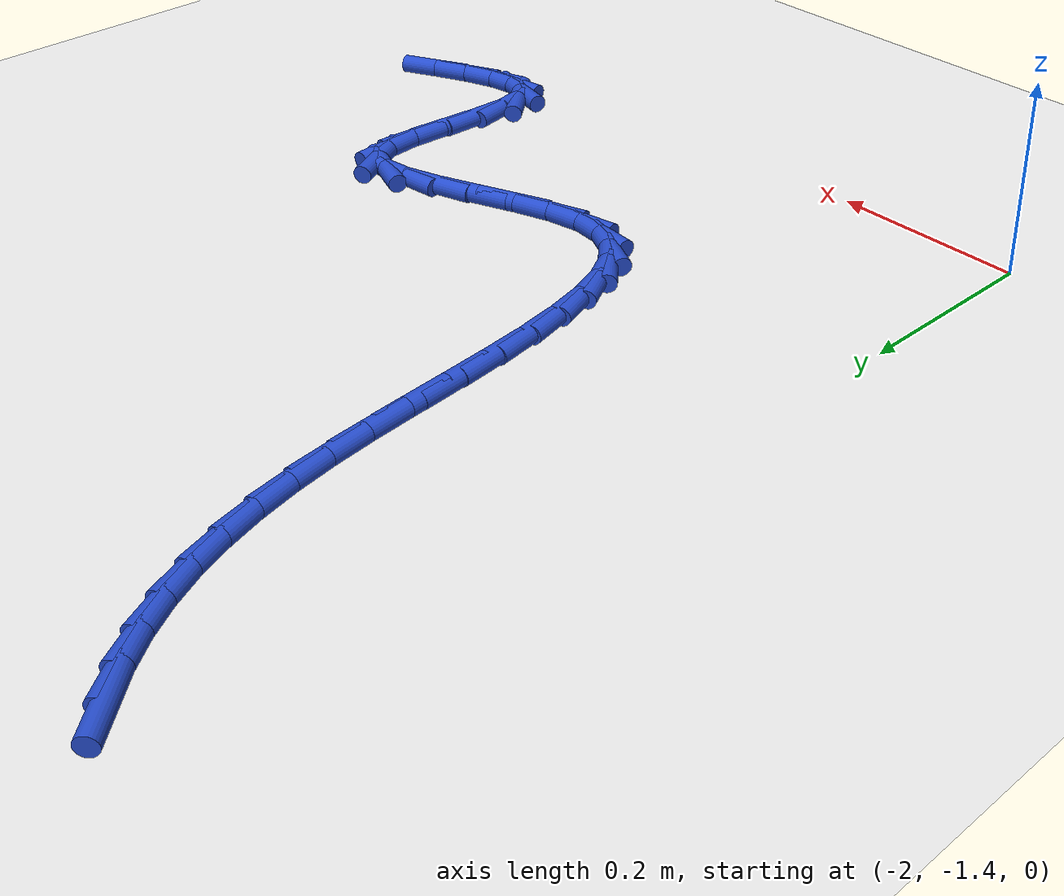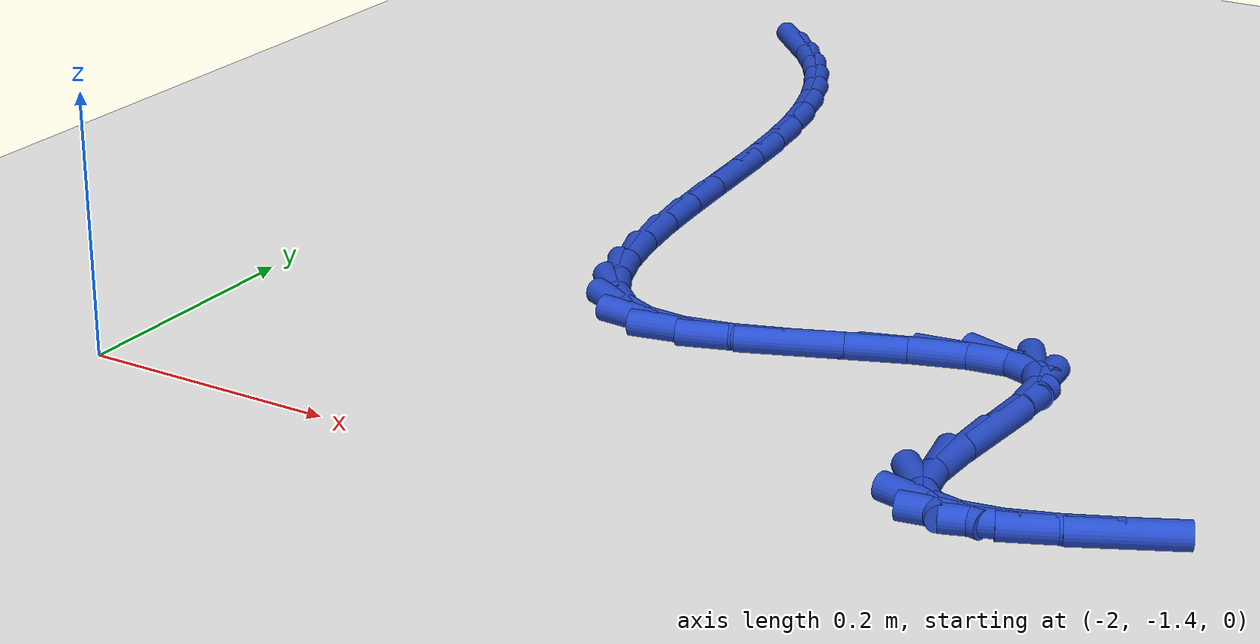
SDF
<sdf version="1.6">
 <world name="default">
  <model name="ground_plane">
   <static>1</static>
   <link name="link">
    <collision name="collision">
     <geometry><plane><normal>0 0 1</normal><size>100 100</size></plane></geometry>
     <surface><friction><ode><mu>100</mu><mu2>50</mu2></ode></friction></surface>
    </collision>
    <visual name="visual">
     <cast_shadows>0</cast_shadows>
     <geometry><plane><normal>0 0 1</normal><size>100 100</size></plane></geometry>
     <material>
      <script><uri>file://media/materials/scripts/gazebo.material</uri><name>Gazebo/WhiteGlow</name></script>
     </material>
    </visual>
   </link>
  </model>
  <model name="line">
   <link name="link_139">
    <pose>-1.9112197061378138 -0.48710332789352906 0.01 0 1.57 -0.8206935505672408</pose>
    <collision name="collision">
     <geometry><cylinder><radius>0.01</radius><length>0.08</length></cylinder></geometry>
    </collision>
    <visual name="visual">
     <material>
      <script><name>Gazebo/Blue</name><uri>file://media/materials/scripts/gazebo.material</uri></script>
     </material>
     <geometry><cylinder><radius>0.01</radius><length>0.08</length></cylinder></geometry>
    </visual>
   </link>
   <link name="link_140">
    <pose>-1.8882291716728896 -0.5117768838238149 0.01 0 1.57 -0.9207441492463986</pose>
    <collision name="collision">
     <geometry><cylinder><radius>0.01</radius><length>0.08</length></cylinder></geometry>
    </collision>
    <visual name="visual">
     <material>
      <script><name>Gazebo/Blue</name><uri>file://media/materials/scripts/gazebo.material</uri></script>
     </material>
     <geometry><cylinder><radius>0.01</radius><length>0.08</length></cylinder></geometry>
    </visual>
   </link>
   <link name="link_141">
    <pose>-1.8677409371517546 -0.5387249201464833 0.01 0 1.57 -1.018535880360209</pose>
    <collision name="collision">
     <geometry><cylinder><radius>0.01</radius><length>0.08</length></cylinder></geometry>
    </collision>
    <visual name="visual">
     <material>
      <script><name>Gazebo/Blue</name><uri>file://media/materials/scripts/gazebo.material</uri></script>
     </material>
     <geometry><cylinder><radius>0.01</radius><length>0.08</length></cylinder></geometry>
    </visual>
   </link>
   <link name="link_142">
    <pose>-1.8496781105260163 -0.568037237250114 0.01 0 1.57 -1.1114110143197498</pose>
    <collision name="collision">
     <geometry><cylinder><radius>0.01</radius><length>0.08</length></cylinder></geometry>
    </collision>
    <visual name="visual">
     <material>
      <script><name>Gazebo/Blue</name><uri>file://media/materials/scripts/gazebo.material</uri></script>
     </material>
     <geometry><cylinder><radius>0.01</radius><length>0.08</length></cylinder></geometry>
    </visual>
   </link>
   <link name="link_143">
    <pose>-1.8339637997472826 -0.5998036355232865 0.01 0 1.57 -1.1973808792304503</pose>
    <collision name="collision">
     <geometry><cylinder><radius>0.01</radius><length>0.08</length></cylinder></geometry>
    </collision>
    <visual name="visual">
     <material>
      <script><name>Gazebo/Blue</name><uri>file://media/materials/scripts/gazebo.material</uri></script>
     </material>
     <geometry><cylinder><radius>0.01</radius><length>0.08</length></cylinder></geometry>
    </visual>
   </link>
   <link name="link_144">
    <pose>-1.8205211127671606 -0.6341139153545808 0.01 0 1.57 -1.2752529120552323</pose>
    <collision name="collision">
     <geometry><cylinder><radius>0.01</radius><length>0.08</length></cylinder></geometry>
    </collision>
    <visual name="visual">
     <material>
      <script><name>Gazebo/Blue</name><uri>file://media/materials/scripts/gazebo.material</uri></script>
     </material>
     <geometry><cylinder><radius>0.01</radius><length>0.08</length></cylinder></geometry>
    </visual>
   </link>
   <link name="link_145">
    <pose>-1.8092731575372578 -0.6710578771325741 0.01 0 1.57 -1.3445698397428605</pose>
    <collision name="collision">
     <geometry><cylinder><radius>0.01</radius><length>0.08</length></cylinder></geometry>
    </collision>
    <visual name="visual">
     <material>
      <script><name>Gazebo/Blue</name><uri>file://media/materials/scripts/gazebo.material</uri></script>
     </material>
     <geometry><cylinder><radius>0.01</radius><length>0.08</length></cylinder></geometry>
    </visual>
   </link>
   <link name="link_146">
    <pose>-1.8001430420091833 -0.710725321245847 0.01 0 1.57 -1.4054278750102835</pose>
    <collision name="collision">
     <geometry><cylinder><radius>0.01</radius><length>0.08</length></cylinder></geometry>
    </collision>
    <visual name="visual">
     <material>
      <script><name>Gazebo/Blue</name><uri>file://media/materials/scripts/gazebo.material</uri></script>
     </material>
     <geometry><cylinder><radius>0.01</radius><length>0.08</length></cylinder></geometry>
    </visual>
   </link>
   <link name="link_147">
    <pose>-1.79305345765406 -0.7532052532649454 0.01 0 1.57 -1.4540579397798228</pose>
    <collision name="collision">
     <geometry><cylinder><radius>0.01</radius><length>0.08</length></cylinder></geometry>
    </collision>
    <visual name="visual">
     <material>
      <script><name>Gazebo/Blue</name><uri>file://media/materials/scripts/gazebo.material</uri></script>
     </material>
     <geometry><cylinder><radius>0.01</radius><length>0.08</length></cylinder></geometry>
    </visual>
   </link>
   <link name="link_148">
    <pose>-1.7877672742345798 -0.7982816724492007 0.01 0 1.57 -1.4827786442672295</pose>
    <collision name="collision">
     <geometry><cylinder><radius>0.01</radius><length>0.08</length></cylinder></geometry>
    </collision>
    <visual name="visual">
     <material>
      <script><name>Gazebo/Blue</name><uri>file://media/materials/scripts/gazebo.material</uri></script>
     </material>
     <geometry><cylinder><radius>0.01</radius><length>0.08</length></cylinder></geometry>
    </visual>
   </link>
   <link name="link_149">
    <pose>-1.7836468560786016 -0.8449742470637492 0.01 0 1.57 -1.4935521685091329</pose>
    <collision name="collision">
     <geometry><cylinder><radius>0.01</radius><length>0.08</length></cylinder></geometry>
    </collision>
    <visual name="visual">
     <material>
      <script><name>Gazebo/Blue</name><uri>file://media/materials/scripts/gazebo.material</uri></script>
     </material>
     <geometry><cylinder><radius>0.01</radius><length>0.08</length></cylinder></geometry>
    </visual>
   </link>
   <link name="link_150">
    <pose>-1.7799928425937792 -0.8921848485462135 0.01 0 1.57 -1.4876317866892743</pose>
    <collision name="collision">
     <geometry><cylinder><radius>0.01</radius><length>0.08</length></cylinder></geometry>
    </collision>
    <visual name="visual">
     <material>
      <script><name>Gazebo/Blue</name><uri>file://media/materials/scripts/gazebo.material</uri></script>
     </material>
     <geometry><cylinder><radius>0.01</radius><length>0.08</length></cylinder></geometry>
    </visual>
   </link>
   <link name="link_151">
    <pose>-1.7761058731877686 -0.9388153483342158 0.01 0 1.57 -1.4639953051905088</pose>
    <collision name="collision">
     <geometry><cylinder><radius>0.01</radius><length>0.08</length></cylinder></geometry>
    </collision>
    <visual name="visual">
     <material>
      <script><name>Gazebo/Blue</name><uri>file://media/materials/scripts/gazebo.material</uri></script>
     </material>
     <geometry><cylinder><radius>0.01</radius><length>0.08</length></cylinder></geometry>
    </visual>
   </link>
   <link name="link_152">
    <pose>-1.771286587268222 -0.9837676178653774 0.01 0 1.57 -1.4190189010455867</pose>
    <collision name="collision">
     <geometry><cylinder><radius>0.01</radius><length>0.08</length></cylinder></geometry>
    </collision>
    <visual name="visual">
     <material>
      <script><name>Gazebo/Blue</name><uri>file://media/materials/scripts/gazebo.material</uri></script>
     </material>
     <geometry><cylinder><radius>0.01</radius><length>0.08</length></cylinder></geometry>
    </visual>
   </link>
   <link name="link_153">
    <pose>-1.7648356242427954 -1.0259435285773213 0.01 0 1.57 -1.3454056612288068</pose>
    <collision name="collision">
     <geometry><cylinder><radius>0.01</radius><length>0.08</length></cylinder></geometry>
    </collision>
    <visual name="visual">
     <material>
      <script><name>Gazebo/Blue</name><uri>file://media/materials/scripts/gazebo.material</uri></script>
     </material>
     <geometry><cylinder><radius>0.01</radius><length>0.08</length></cylinder></geometry>
    </visual>
   </link>
   <link name="link_154">
    <pose>-1.7560536235191428 -1.064244951907667 0.01 0 1.57 -1.2301892251169746</pose>
    <collision name="collision">
     <geometry><cylinder><radius>0.01</radius><length>0.08</length></cylinder></geometry>
    </collision>
    <visual name="visual">
     <material>
      <script><name>Gazebo/Blue</name><uri>file://media/materials/scripts/gazebo.material</uri></script>
     </material>
     <geometry><cylinder><radius>0.01</radius><length>0.08</length></cylinder></geometry>
    </visual>
   </link>
   <link name="link_155">
    <pose>-1.7442412245049188 -1.097573759294038 0.01 0 1.57 -1.0525876415565742</pose>
    <collision name="collision">
     <geometry><cylinder><radius>0.01</radius><length>0.08</length></cylinder></geometry>
    </collision>
    <visual name="visual">
     <material>
      <script><name>Gazebo/Blue</name><uri>file://media/materials/scripts/gazebo.material</uri></script>
     </material>
     <geometry><cylinder><radius>0.01</radius><length>0.08</length></cylinder></geometry>
    </visual>
   </link>
   <link name="link_156">
    <pose>-1.728699066607777 -1.1248318221740548 0.01 0 1.57 -0.7883415164500933</pose>
    <collision name="collision">
     <geometry><cylinder><radius>0.01</radius><length>0.08</length></cylinder></geometry>
    </collision>
    <visual name="visual">
     <material>
      <script><name>Gazebo/Blue</name><uri>file://media/materials/scripts/gazebo.material</uri></script>
     </material>
     <geometry><cylinder><radius>0.01</radius><length>0.08</length></cylinder></geometry>
    </visual>
   </link>
   <link name="link_157">
    <pose>-1.708727789235372 -1.1449210119853401 0.01 0 1.57 -0.44018624037053355</pose>
    <collision name="collision">
     <geometry><cylinder><radius>0.01</radius><length>0.08</length></cylinder></geometry>
    </collision>
    <visual name="visual">
     <material>
      <script><name>Gazebo/Blue</name><uri>file://media/materials/scripts/gazebo.material</uri></script>
     </material>
     <geometry><cylinder><radius>0.01</radius><length>0.08</length></cylinder></geometry>
    </visual>
   </link>
   <link name="link_158">
    <pose>-1.6836280317953587 -1.156743200165515 0.01 0 1.57 -0.0792802185154144</pose>
    <collision name="collision">
     <geometry><cylinder><radius>0.01</radius><length>0.08</length></cylinder></geometry>
    </collision>
    <visual name="visual">
     <material>
      <script><name>Gazebo/Blue</name><uri>file://media/materials/scripts/gazebo.material</uri></script>
     </material>
     <geometry><cylinder><radius>0.01</radius><length>0.08</length></cylinder></geometry>
    </visual>
   </link>
   <link name="link_159">
    <pose>-1.6527004587277634 -1.1592002949776385 0.01 0 1.57 0.1910142216504011</pose>
    <collision name="collision">
     <geometry><cylinder><radius>0.01</radius><length>0.08</length></cylinder></geometry>
    </collision>
    <visual name="visual">
     <material>
      <script><name>Gazebo/Blue</name><uri>file://media/materials/scripts/gazebo.material</uri></script>
     </material>
     <geometry><cylinder><radius>0.01</radius><length>0.08</length></cylinder></geometry>
    </visual>
   </link>
   <link name="link_160">
    <pose>-1.6158431981210062 -1.1520731409734144 0.01 0 1.57 0.3260076270821091</pose>
    <collision name="collision">
     <geometry><cylinder><radius>0.01</radius><length>0.08</length></cylinder></geometry>
    </collision>
    <visual name="visual">
     <material>
      <script><name>Gazebo/Blue</name><uri>file://media/materials/scripts/gazebo.material</uri></script>
     </material>
     <geometry><cylinder><radius>0.01</radius><length>0.08</length></cylinder></geometry>
    </visual>
   </link>
   <link name="link_161">
    <pose>-1.5751000416241072 -1.138299095358834 0.01 0 1.57 0.37914904846783865</pose>
    <collision name="collision">
     <geometry><cylinder><radius>0.01</radius><length>0.08</length></cylinder></geometry>
    </collision>
    <visual name="visual">
     <material>
      <script><name>Gazebo/Blue</name><uri>file://media/materials/scripts/gazebo.material</uri></script>
     </material>
     <geometry><cylinder><radius>0.01</radius><length>0.08</length></cylinder></geometry>
    </visual>
   </link>
   <link name="link_162">
    <pose>-1.532996272969397 -1.1215238444003344 0.01 0 1.57 0.3753394778290797</pose>
    <collision name="collision">
     <geometry><cylinder><radius>0.01</radius><length>0.08</length></cylinder></geometry>
    </collision>
    <visual name="visual">
     <material>
      <script><name>Gazebo/Blue</name><uri>file://media/materials/scripts/gazebo.material</uri></script>
     </material>
     <geometry><cylinder><radius>0.01</radius><length>0.08</length></cylinder></geometry>
    </visual>
   </link>
   <link name="link_163">
    <pose>-1.4920571758892107 -1.1053930743643559 0.01 0 1.57 0.307774922642443</pose>
    <collision name="collision">
     <geometry><cylinder><radius>0.01</radius><length>0.08</length></cylinder></geometry>
    </collision>
    <visual name="visual">
     <material>
      <script><name>Gazebo/Blue</name><uri>file://media/materials/scripts/gazebo.material</uri></script>
     </material>
     <geometry><cylinder><radius>0.01</radius><length>0.08</length></cylinder></geometry>
    </visual>
   </link>
   <link name="link_164">
    <pose>-1.4548080341158798 -1.093552471517337 0.01 0 1.57 0.12516431969078406</pose>
    <collision name="collision">
     <geometry><cylinder><radius>0.01</radius><length>0.08</length></cylinder></geometry>
    </collision>
    <visual name="visual">
     <material>
      <script><name>Gazebo/Blue</name><uri>file://media/materials/scripts/gazebo.material</uri></script>
     </material>
     <geometry><cylinder><radius>0.01</radius><length>0.08</length></cylinder></geometry>
    </visual>
   </link>
   <link name="link_165">
    <pose>-1.4237741313817363 -1.0896477221257161 0.01 0 1.57 -0.33163517575862517</pose>
    <collision name="collision">
     <geometry><cylinder><radius>0.01</radius><length>0.08</length></cylinder></geometry>
    </collision>
    <visual name="visual">
     <material>
      <script><name>Gazebo/Blue</name><uri>file://media/materials/scripts/gazebo.material</uri></script>
     </material>
     <geometry><cylinder><radius>0.01</radius><length>0.08</length></cylinder></geometry>
    </visual>
   </link>
   <link name="link_166">
    <pose>-1.4014807514191128 -1.0973245124559323 0.01 0 1.57 -1.0973304192114983</pose>
    <collision name="collision">
     <geometry><cylinder><radius>0.01</radius><length>0.08</length></cylinder></geometry>
    </collision>
    <visual name="visual">
     <material>
      <script><name>Gazebo/Blue</name><uri>file://media/materials/scripts/gazebo.material</uri></script>
     </material>
     <geometry><cylinder><radius>0.01</radius><length>0.08</length></cylinder></geometry>
    </visual>
   </link>
   <link name="link_167">
    <pose>-1.3900447346295772 -1.119645929441002 0.01 0 1.57 -1.503355282770699</pose>
    <collision name="collision">
     <geometry><cylinder><radius>0.01</radius><length>0.08</length></cylinder></geometry>
    </collision>
    <visual name="visual">
     <material>
      <script><name>Gazebo/Blue</name><uri>file://media/materials/scripts/gazebo.material</uri></script>
     </material>
     <geometry><cylinder><radius>0.01</radius><length>0.08</length></cylinder></geometry>
    </visual>
   </link>
   <link name="link_168">
    <pose>-1.3877137926417487 -1.1541561748363527 0.01 0 1.57 1.500809623107432</pose>
    <collision name="collision">
     <geometry><cylinder><radius>0.01</radius><length>0.08</length></cylinder></geometry>
    </collision>
    <visual name="visual">
     <material>
      <script><name>Gazebo/Blue</name><uri>file://media/materials/scripts/gazebo.material</uri></script>
     </material>
     <geometry><cylinder><radius>0.01</radius><length>0.08</length></cylinder></geometry>
    </visual>
   </link>
   <link name="link_169">
    <pose>-1.390601948172547 -1.1953559786497943 0.01 0 1.57 1.4719896506813932</pose>
    <collision name="collision">
     <geometry><cylinder><radius>0.01</radius><length>0.08</length></cylinder></geometry>
    </collision>
    <visual name="visual">
     <material>
      <script><name>Gazebo/Blue</name><uri>file://media/materials/scripts/gazebo.material</uri></script>
     </material>
     <geometry><cylinder><radius>0.01</radius><length>0.08</length></cylinder></geometry>
    </visual>
   </link>
   <link name="link_170">
    <pose>-1.3948008992704564 -1.2377142272134796 0.01 0 1.57 1.5286619975644762</pose>
    <collision name="collision">
     <geometry><cylinder><radius>0.01</radius><length>0.08</length></cylinder></geometry>
    </collision>
    <visual name="visual">
     <material>
      <script><name>Gazebo/Blue</name><uri>file://media/materials/scripts/gazebo.material</uri></script>
     </material>
     <geometry><cylinder><radius>0.01</radius><length>0.08</length></cylinder></geometry>
    </visual>
   </link>
   <link name="link_171">
    <pose>-1.3964023439839603 -1.2756998068595584 0.01 0 1.57 -1.3992746343906295</pose>
    <collision name="collision">
     <geometry><cylinder><radius>0.01</radius><length>0.08</length></cylinder></geometry>
    </collision>
    <visual name="visual">
     <material>
      <script><name>Gazebo/Blue</name><uri>file://media/materials/scripts/gazebo.material</uri></script>
     </material>
     <geometry><cylinder><radius>0.01</radius><length>0.08</length></cylinder></geometry>
    </visual>
   </link>
   <link name="link_172">
    <pose>-1.3915296824081786 -1.3038290974430224 0.01 0 1.57 -0.8609944480366637</pose>
    <collision name="collision">
     <geometry><cylinder><radius>0.01</radius><length>0.08</length></cylinder></geometry>
    </collision>
    <visual name="visual">
     <material>
      <script><name>Gazebo/Blue</name><uri>file://media/materials/scripts/gazebo.material</uri></script>
     </material>
     <geometry><cylinder><radius>0.01</radius><length>0.08</length></cylinder></geometry>
    </visual>
   </link>
   <link name="link_173">
    <pose>-1.378157924623692 -1.319392415850369 0.01 0 1.57 -0.2125743731823837</pose>
    <collision name="collision">
     <geometry><cylinder><radius>0.01</radius><length>0.08</length></cylinder></geometry>
    </collision>
    <visual name="visual">
     <material>
      <script><name>Gazebo/Blue</name><uri>file://media/materials/scripts/gazebo.material</uri></script>
     </material>
     <geometry><cylinder><radius>0.01</radius><length>0.08</length></cylinder></geometry>
    </visual>
   </link>
   <link name="link_174">
    <pose>-1.3571034020855541 -1.3239367240720479 0.01 0 1.57 0.16350463157561607</pose>
    <collision name="collision">
     <geometry><cylinder><radius>0.01</radius><length>0.08</length></cylinder></geometry>
    </collision>
    <visual name="visual">
     <material>
      <script><name>Gazebo/Blue</name><uri>file://media/materials/scripts/gazebo.material</uri></script>
     </material>
     <geometry><cylinder><radius>0.01</radius><length>0.08</length></cylinder></geometry>
    </visual>
   </link>
   <link name="link_175">
    <pose>-1.3294235400965704 -1.3193701720147568 0.01 0 1.57 0.34022180367682975</pose>
    <collision name="collision">
     <geometry><cylinder><radius>0.01</radius><length>0.08</length></cylinder></geometry>
    </collision>
    <visual name="visual">
     <material>
      <script><name>Gazebo/Blue</name><uri>file://media/materials/scripts/gazebo.material</uri></script>
     </material>
     <geometry><cylinder><radius>0.01</radius><length>0.08</length></cylinder></geometry>
    </visual>
   </link>
   <link name="link_176">
    <pose>-1.2961757639595501 -1.307600909585194 0.01 0 1.57 0.4244518224474685</pose>
    <collision name="collision">
     <geometry><cylinder><radius>0.01</radius><length>0.08</length></cylinder></geometry>
    </collision>
    <visual name="visual">
     <material>
      <script><name>Gazebo/Blue</name><uri>file://media/materials/scripts/gazebo.material</uri></script>
     </material>
     <geometry><cylinder><radius>0.01</radius><length>0.08</length></cylinder></geometry>
    </visual>
   </link>
   <link name="link_177">
    <pose>-1.2584174989772994 -1.2905370866900585 0.01 0 1.57 0.4606258151254006</pose>
    <collision name="collision">
     <geometry><cylinder><radius>0.01</radius><length>0.08</length></cylinder></geometry>
    </collision>
    <visual name="visual">
     <material>
      <script><name>Gazebo/Blue</name><uri>file://media/materials/scripts/gazebo.material</uri></script>
     </material>
     <geometry><cylinder><radius>0.01</radius><length>0.08</length></cylinder></geometry>
    </visual>
   </link>
  </model>
 </world>
</sdf>
